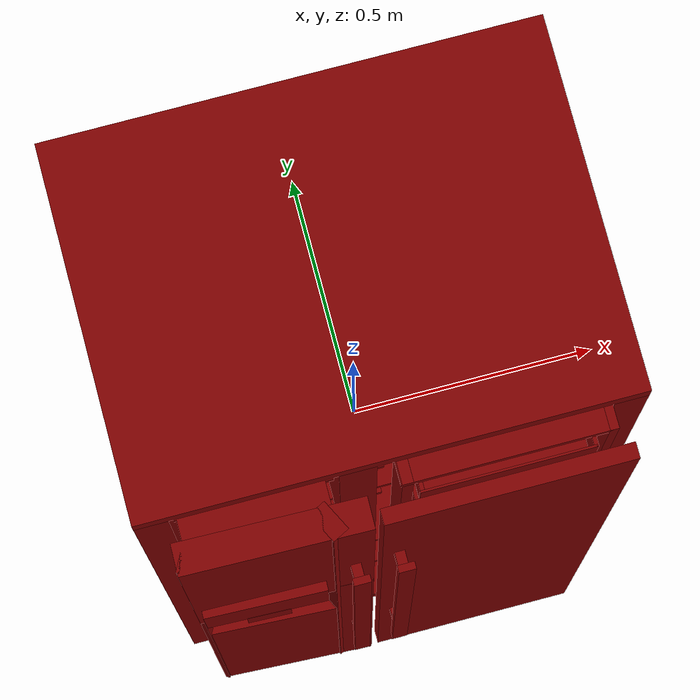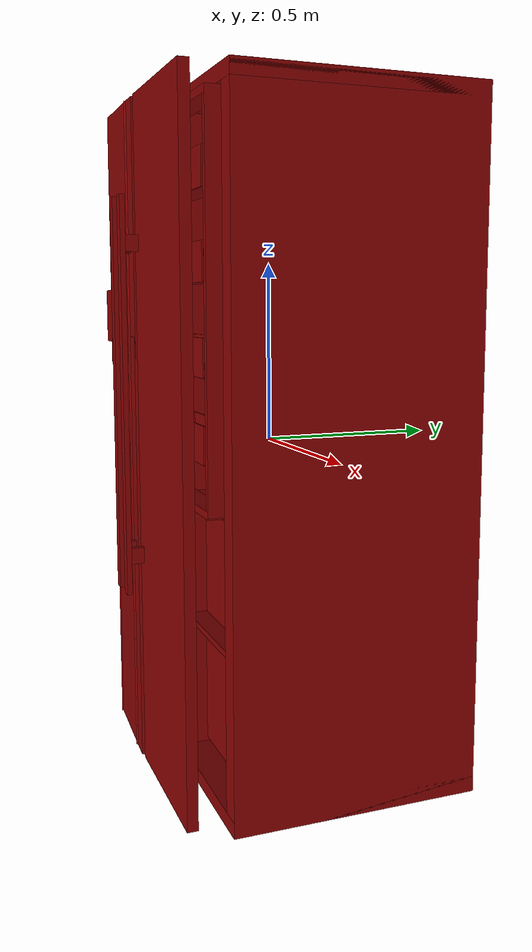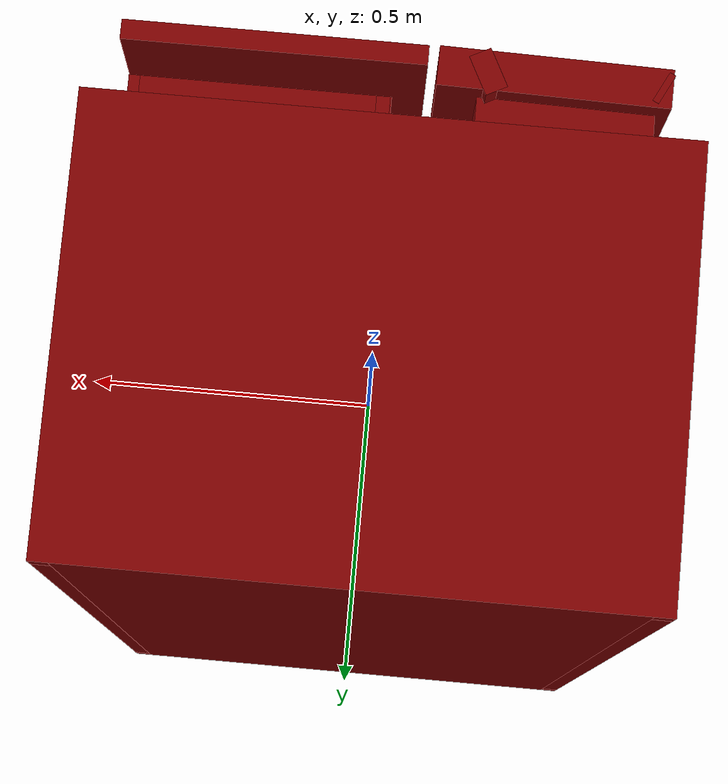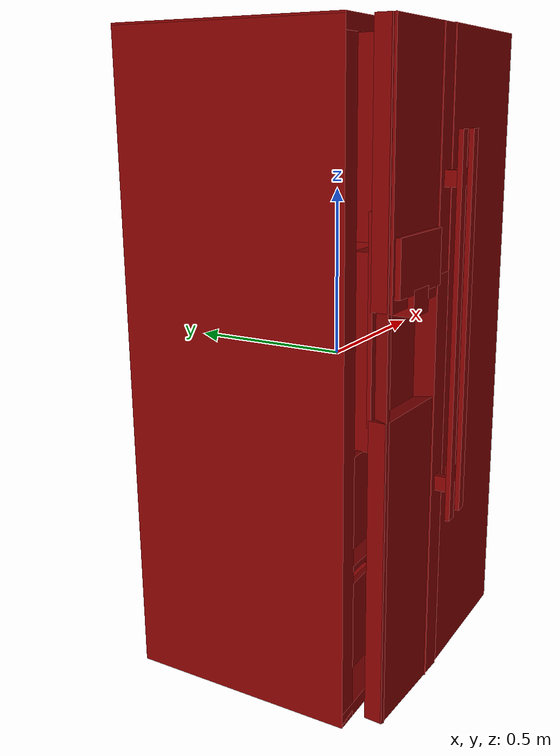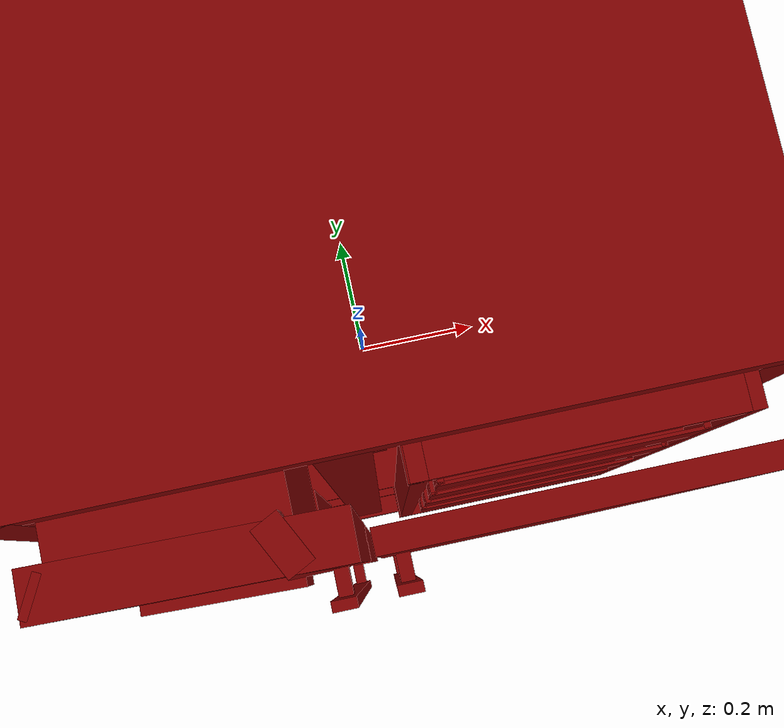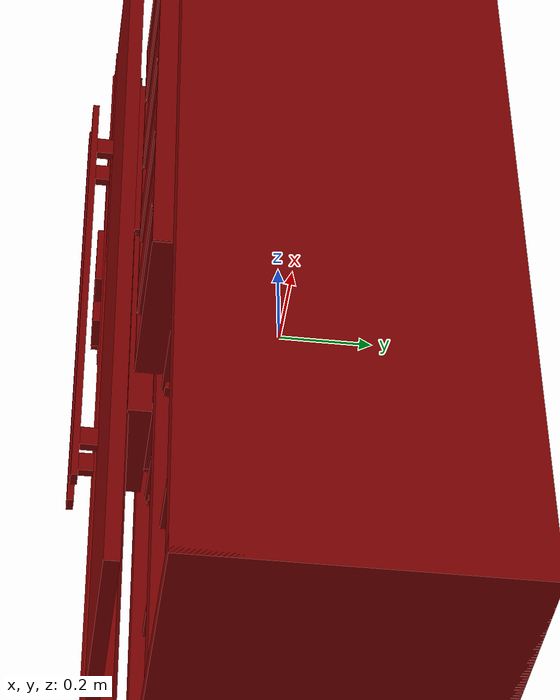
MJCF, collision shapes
<mujoco model="model">
  <compiler angle="radian"/>
  <asset>
    <mesh file="visuals/Body001.obj" name="Body001_vis"/>
    <mesh file="visuals/Body001_Clear001.obj" name="Body001_Clear001_vis"/>
    <mesh file="visuals/Door001.obj" name="Door001_vis"/>
    <mesh file="visuals/Door002.obj" name="Door002_vis"/>
    <mesh file="visuals/Door002_Clear.obj" name="Door002_Clear_vis"/>
    <mesh file="visuals/Drawer001_Clear.obj" name="Drawer001_Clear_vis"/>
    <mesh file="visuals/Drawer002_Clear.obj" name="Drawer002_Clear_vis"/>
    <mesh file="visuals/Drawer003.obj" name="Drawer003_vis"/>
    <mesh file="visuals/Drawer004.obj" name="Drawer004_vis"/>
    <texture file="visuals/T_BC001.png" name="Body001_material" type="2d"/>
    <material name="Body001_material" rgba="1 1 1 1.0" texture="Body001_material" shininess="0.6141486167907715" specular="0.3103448502657381"/>
    <texture file="visuals/T_BC001.png" name="Body001_Clear001_material" type="2d"/>
    <material name="Body001_Clear001_material" rgba="1 1 1 0.3300970792770386" texture="Body001_Clear001_material" shininess="0.141421377658844" specular="0.3103448502657381"/>
    <texture file="visuals/T_BC001.png" name="Door001_material" type="2d"/>
    <material name="Door001_material" rgba="1 1 1 1.0" texture="Door001_material" shininess="0.6141486167907715" specular="0.3103448502657381"/>
    <texture file="visuals/T_BC001.png" name="Door002_material" type="2d"/>
    <material name="Door002_material" rgba="1 1 1 1.0" texture="Door002_material" shininess="0.6141486167907715" specular="0.3103448502657381"/>
    <texture file="visuals/T_BC001.png" name="Door002_Clear_material" type="2d"/>
    <material name="Door002_Clear_material" rgba="1 1 1 0.3300970792770386" texture="Door002_Clear_material" shininess="0.141421377658844" specular="0.3103448502657381"/>
    <texture file="visuals/T_BC001.png" name="Drawer001_Clear_material" type="2d"/>
    <material name="Drawer001_Clear_material" rgba="1 1 1 0.3300970792770386" texture="Drawer001_Clear_material" shininess="0.141421377658844" specular="0.3103448502657381"/>
    <texture file="visuals/T_BC001.png" name="Drawer002_Clear_material" type="2d"/>
    <material name="Drawer002_Clear_material" rgba="1 1 1 0.3300970792770386" texture="Drawer002_Clear_material" shininess="0.141421377658844" specular="0.3103448502657381"/>
    <texture file="visuals/T_BC001.png" name="Drawer003_material" type="2d"/>
    <material name="Drawer003_material" rgba="1 1 1 1.0" texture="Drawer003_material" shininess="0.6141486167907715" specular="0.3103448502657381"/>
    <texture file="visuals/T_BC001.png" name="Drawer004_material" type="2d"/>
    <material name="Drawer004_material" rgba="1 1 1 1.0" texture="Drawer004_material" shininess="0.6141486167907715" specular="0.3103448502657381"/>
  </asset>
  <default>
    <default class="visual">
      <geom conaffinity="0" contype="0" group="1" type="mesh"/>
    </default>
    <default class="collision">
      <geom group="0" rgba="0.5 0 0 0.5"/>
    </default>
    <default class="spawn">
      <geom group="0" rgba="1 1 1 0.5" contype="0" conaffinity="0"/>
      <site group="0" rgba="1 1 1 0.5"/>
    </default>
    <default class="region">
      <geom group="1" conaffinity="0" contype="0" rgba="0 1 0 0"/>
    </default>
  </default>
  <worldbody>
    <body>
      <body name="object">
        <geom mesh="Body001_vis" type="mesh" solimp="0.998 0.998 0.001" solref="0.001 1" density="100" friction="0.95 0.3 0.1" class="visual" material="Body001_material"/>
        <geom class="collision" type="box" pos="0.426985 0.080669 0.000000" size="0.031174317002296448 0.3472144603729248 0.9458772540092468" quat="1.0 0.0 0.0 0.0"/>
        <geom class="collision" type="box" pos="0.000000 0.080808 0.925012" size="0.45815926790237427 0.34735387563705444 0.020865734666585922" quat="1.0 0.0 0.0 0.0"/>
        <geom class="collision" type="box" pos="0.000215 0.328827 -0.000000" size="0.42810675501823425 0.09933542460203171 0.9458773732185364" quat="1.0 0.0 0.0 0.0"/>
        <geom class="collision" type="box" pos="-0.058851 -0.008898 0.000052" size="0.03430929034948349 0.24979962408542633 0.904093861579895" quat="1.0 0.0 0.0 0.0"/>
        <geom class="collision" type="box" pos="-0.389241 -0.000378 -0.162497" size="0.014247119426727295 0.24221399426460266 0.008260749280452728" quat="1.0 0.0 0.0 0.0"/>
        <geom class="collision" type="box" pos="-0.427252 0.080808 -0.002839" size="0.030907582491636276 0.34735387563705444 0.9430378675460815" quat="1.0 0.0 0.0 0.0"/>
        <geom class="collision" type="box" pos="0.000124 -0.005001 -0.511726" size="0.4170524477958679 0.23744818568229675 0.008542299270629883" quat="1.0 0.0 0.0 0.0"/>
        <geom class="collision" type="box" pos="-0.100918 -0.000378 -0.162497" size="0.016719326376914978 0.24221399426460266 0.008260749280452728" quat="1.0 0.0 0.0 0.0"/>
        <geom class="collision" type="box" pos="-0.014415 -0.000378 -0.162497" size="0.016719326376914978 0.24221399426460266 0.008260749280452728" quat="1.0 0.0 0.0 0.0"/>
        <geom class="collision" type="box" pos="0.388739 -0.000378 -0.162497" size="0.016719326376914978 0.24221399426460266 0.008260749280452728" quat="1.0 0.0 0.0 0.0"/>
        <geom class="collision" type="box" pos="0.386986 0.025491 0.193872" size="0.01128388661891222 0.21634510159492493 0.008260749280452728" quat="1.0 0.0 0.0 0.0"/>
        <geom class="collision" type="box" pos="-0.014415 0.018451 0.193872" size="0.016719326376914978 0.22338435053825378 0.008260749280452728" quat="1.0 0.0 0.0 0.0"/>
        <geom class="collision" type="box" pos="-0.100918 0.018451 0.193872" size="0.016719326376914978 0.22338435053825378 0.008260749280452728" quat="1.0 0.0 0.0 0.0"/>
        <geom class="collision" type="box" pos="-0.389241 0.018451 0.193872" size="0.014247119426727295 0.22338435053825378 0.008260749280452728" quat="1.0 0.0 0.0 0.0"/>
        <geom class="collision" type="box" pos="-0.389241 0.015060 0.540342" size="0.014247119426727295 0.22677546739578247 0.008260749280452728" quat="1.0 0.0 0.0 0.0"/>
        <geom class="collision" type="box" pos="-0.100918 0.015060 0.540342" size="0.016719326376914978 0.22677552700042725 0.008260749280452728" quat="1.0 0.0 0.0 0.0"/>
        <geom class="collision" type="box" pos="-0.014415 0.015060 0.540342" size="0.016719326376914978 0.22677549719810486 0.008260749280452728" quat="1.0 0.0 0.0 0.0"/>
        <geom class="collision" type="box" pos="0.385574 0.015060 0.540342" size="0.010424098931252956 0.22677555680274963 0.008260749280452728" quat="1.0 0.0 0.0 0.0"/>
        <geom class="collision" type="box" pos="0.000000 0.080808 -0.924960" size="0.45815926790237427 0.34735387563705444 0.020917614921927452" quat="1.0 0.0 0.0 0.0"/>
        <geom class="collision" type="box" pos="-0.214670 -0.007342 -0.147802" size="0.19012895226478577 0.2397892326116562 0.006109719164669514" quat="1.0 0.0 0.0 0.0"/>
        <geom class="collision" type="box" pos="-0.214670 0.018456 0.211554" size="0.19012895226478577 0.21399196982383728 0.007860741578042507" quat="1.0 0.0 0.0 0.0"/>
        <geom class="collision" type="box" pos="-0.215178 0.018456 0.554935" size="0.1883099377155304 0.21399198472499847 0.005926718935370445" quat="1.0 0.0 0.0 0.0"/>
        <body name="Body001_Clear001">
          <geom mesh="Body001_Clear001_vis" type="mesh" solimp="0.998 0.998 0.001" solref="0.001 1" density="100" friction="0.95 0.3 0.1" class="visual" material="Body001_Clear001_material"/>
          <geom class="collision" type="box" pos="0.162008 -0.007342 -0.147802" size="0.255168080329895 0.2397892326116562 0.006109719164669514" quat="1.0 0.0 0.0 0.0"/>
          <geom class="collision" type="box" pos="0.162008 0.018456 0.211554" size="0.255168080329895 0.21399196982383728 0.007860741578042507" quat="1.0 0.0 0.0 0.0"/>
          <geom class="collision" type="box" pos="0.161501 0.018456 0.554935" size="0.25334906578063965 0.21399198472499847 0.005926718935370445" quat="1.0 0.0 0.0 0.0"/>
        </body>
        <body name="freezer_door">
          <joint axis="0.0 0.0 -1.0" pos="-0.413870 -0.350109 0.001723" limited="true" name="freezer_door_joint" range="0.0 1.5707963267948966" type="hinge" damping="1" frictionloss="1" armature=".01" stiffness="0.05"/>
          <geom mesh="Door001_vis" type="mesh" solimp="0.998 0.998 0.001" solref="0.001 1" density="100" friction="0.95 0.3 0.1" class="visual" material="Door001_material"/>
          <geom class="collision" type="box" pos="-0.375226 -0.225431 -0.042792" size="0.005302963778376579 0.03438347578048706 0.045121245086193085" quat="1.0 0.0 0.0 0.0"/>
          <geom class="collision" type="box" pos="-0.264832 -0.198077 -0.040802" size="0.10756411403417587 0.002234865678474307 0.03930643945932388" quat="1.0 0.0 0.0 0.0"/>
          <geom class="collision" type="box" pos="-0.152667 -0.224823 -0.042480" size="0.006141011603176594 0.03377559408545494 0.045045383274555206" quat="1.0 0.0 0.0 0.0"/>
          <geom class="collision" type="box" pos="-0.259094 -0.225599 -0.082862" size="0.1115652471780777 0.033953163772821426 0.004646170884370804" quat="1.0 0.0 0.0 0.0"/>
          <geom class="collision" type="box" pos="-0.230823 -0.343503 0.591810" size="0.17186114192008972 0.029590152204036713 0.3520924150943756" quat="0.9999542236328125 0.0 -0.0 -0.00956775899976492" name="freezer_door_main"/>
          <geom class="collision" type="box" pos="-0.095434 -0.347354 -0.317986" size="0.0363582968711853 0.029590152204036713 0.6141636371612549" quat="0.9996857047080994 0.0 -0.0 -0.02506900392472744"/>
          <geom class="collision" type="box" pos="-0.132719 -0.343187 0.006112" size="0.017285535112023354 0.031519815325737 0.9377908110618591" quat="0.972369909286499 0.0 0.0 0.23344537615776062"/>
          <geom class="collision" type="box" pos="-0.389435 -0.341123 0.006112" size="0.005014027003198862 0.024861132726073265 0.9377908110618591" quat="0.972369909286499 0.0 -0.0 -0.233445405960083"/>
          <geom class="collision" type="box" pos="-0.279383 -0.314769 0.211052" size="0.12201347947120667 0.006266779266297817 0.2774510681629181" quat="0.9996857047080994 0.0 -0.0 -0.02506900392472744"/>
          <geom class="collision" type="box" pos="-0.269159 -0.356126 0.251180" size="0.04307648912072182 0.03443373367190361 0.03533017635345459" quat="0.9998664259910583 0.0 -0.0 -0.016344254836440086"/>
          <geom class="collision" type="box" pos="-0.270818 -0.355081 0.351562" size="0.11950033903121948 0.03443373367190361 0.07683902978897095" quat="0.9998664259910583 0.0 -0.0 -0.016344254836440086"/>
          <geom class="collision" type="box" pos="-0.230899 -0.343189 -0.489177" size="0.17186114192008972 0.02695966698229313 0.44297271966934204" quat="0.9996857047080994 0.0 -0.0 -0.02506900392472744"/>
          <geom class="collision" type="box" pos="-0.251364 -0.270292 0.656601" size="0.13150446116924286 0.050830140709877014 0.24646736681461334" quat="1.0 0.0 0.0 0.0"/>
          <geom class="collision" type="box" pos="-0.256377 -0.284258 0.125955" size="0.1384330540895462 0.026513097807765007 0.2620489001274109" quat="1.0 0.0 0.0 0.0"/>
          <geom class="collision" type="box" pos="-0.095409 -0.421697 0.128459" size="0.016213277354836464 0.007124675903469324 0.5508098006248474" quat="1.0 0.0 0.0 0.0" name="freezer_door_handle_main"/>
          <geom class="collision" type="box" pos="-0.095338 -0.396243 0.551513" size="0.009819971397519112 0.019211111590266228 0.022575894370675087" quat="1.0 0.0 0.0 0.0" name="freezer_door_handle_1"/>
          <geom class="collision" type="box" pos="-0.095338 -0.396243 -0.314072" size="0.009819971397519112 0.019211111590266228 0.022575894370675087" quat="1.0 0.0 0.0 0.0" name="freezer_door_handle_2"/>
        </body>
        <body name="fridge_door">
          <joint axis="0.0 0.0 1.0" pos="0.413762 -0.347951 0.002113" limited="true" name="fridge_door_joint" range="0.0 1.5707963267948966" type="hinge" damping="1" frictionloss="1" armature=".01" stiffness="0.05"/>
          <geom mesh="Door002_vis" type="mesh" solimp="0.998 0.998 0.001" solref="0.001 1" density="100" friction="0.95 0.3 0.1" class="visual" material="Door002_material"/>
          <geom class="collision" type="box" pos="0.181499 -0.359482 0.006235" size="0.2255043089389801 0.014911549165844917 0.9396424889564514" quat="1.0 0.0 0.0 0.0" name="fridge_door_main"/>
          <geom class="collision" type="box" pos="0.198717 -0.278132 0.885137" size="0.1943289339542389 0.029394090175628662 0.010065913200378418" quat="1.0 0.0 0.0 0.0"/>
          <geom class="collision" type="box" pos="0.385573 -0.278132 0.381353" size="0.00825885683298111 0.029394090175628662 0.5138506889343262" quat="1.0 0.0 0.0 0.0"/>
          <geom class="collision" type="box" pos="0.016719 -0.278132 0.381353" size="0.010247983038425446 0.029394090175628662 0.5138506889343262" quat="1.0 0.0 0.0 0.0"/>
          <geom class="collision" type="box" pos="0.198717 -0.278132 -0.126325" size="0.1943289339542389 0.029394090175628662 0.010065913200378418" quat="1.0 0.0 0.0 0.0"/>
          <geom class="collision" type="box" pos="-0.012200 -0.394085 -0.314072" size="0.009819971397519112 0.019211111590266228 0.022575894370675087" quat="1.0 0.0 0.0 0.0" name="fridge_door_handle_1"/>
          <geom class="collision" type="box" pos="-0.012200 -0.394085 0.551513" size="0.009819971397519112 0.019211111590266228 0.022575894370675087" quat="1.0 0.0 0.0 0.0" name="fridge_door_handle_2"/>
          <geom class="collision" type="box" pos="-0.012271 -0.419539 0.128459" size="0.016213277354836464 0.007124675903469324 0.5508098006248474" quat="1.0 0.0 0.0 0.0" name="fridge_door_handle_main"/>
          <body name="Door002_Clear">
            <geom mesh="Door002_Clear_vis" type="mesh" solimp="0.998 0.998 0.001" solref="0.001 1" density="100" friction="0.95 0.3 0.1" class="visual" material="Door002_Clear_material"/>
            <geom class="collision" type="box" pos="0.363939 -0.271040 0.259014" size="0.004108804743736982 0.03693544864654541 0.04862546920776367" quat="1.0 0.0 0.0 0.0"/>
            <geom class="collision" type="box" pos="0.045529 -0.271040 0.259014" size="0.00410880520939827 0.03693544864654541 0.04862546920776367" quat="1.0 0.0 0.0 0.0"/>
            <geom class="collision" type="box" pos="0.204673 -0.234663 0.259014" size="0.16337506473064423 0.0021437890827655792 0.04862546920776367" quat="1.0 0.0 0.0 0.0"/>
            <geom class="collision" type="box" pos="0.204673 -0.270081 0.211382" size="0.16337506473064423 0.03606615960597992 0.00257178395986557" quat="1.0 0.0 0.0 0.0"/>
            <geom class="collision" type="box" pos="0.204673 -0.307052 0.259014" size="0.16337506473064423 0.002143790014088154 0.04862546920776367" quat="1.0 0.0 0.0 0.0"/>
            <geom class="collision" type="box" pos="0.204673 -0.307052 0.044292" size="0.16337506473064423 0.002143790014088154 0.048766158521175385" quat="1.0 0.0 0.0 0.0"/>
            <geom class="collision" type="box" pos="0.204673 -0.270362 -0.003832" size="0.16337506473064423 0.03578478842973709 0.00257178395986557" quat="1.0 0.0 0.0 0.0"/>
            <geom class="collision" type="box" pos="0.204673 -0.235225 0.044292" size="0.16337506473064423 0.0021437890827655792 0.048766158521175385" quat="1.0 0.0 0.0 0.0"/>
            <geom class="collision" type="box" pos="0.045529 -0.271321 0.044292" size="0.00410880520939827 0.03665407747030258 0.048766158521175385" quat="1.0 0.0 0.0 0.0"/>
            <geom class="collision" type="box" pos="0.363939 -0.271321 0.044292" size="0.004108804743736982 0.03665407747030258 0.048766158521175385" quat="1.0 0.0 0.0 0.0"/>
            <geom class="collision" type="box" pos="0.045529 -0.270673 0.490797" size="0.00410880520939827 0.037302352488040924 0.049426592886447906" quat="1.0 0.0 0.0 0.0"/>
            <geom class="collision" type="box" pos="0.206208 -0.233929 0.490797" size="0.15882854163646698 0.0021437890827655792 0.049426592886447906" quat="1.0 0.0 0.0 0.0"/>
            <geom class="collision" type="box" pos="0.204673 -0.269714 0.443942" size="0.16337506473064423 0.03643306344747543 0.00257178395986557" quat="1.0 0.0 0.0 0.0"/>
            <geom class="collision" type="box" pos="0.204673 -0.307052 0.490797" size="0.16337506473064423 0.002143790014088154 0.049426592886447906" quat="1.0 0.0 0.0 0.0"/>
            <geom class="collision" type="box" pos="0.204673 -0.269280 0.666563" size="0.16337506473064423 0.036867283284664154 0.00257178395986557" quat="1.0 0.0 0.0 0.0"/>
            <geom class="collision" type="box" pos="0.204673 -0.233060 0.713229" size="0.16337506473064423 0.0021437890827655792 0.04884042590856552" quat="1.0 0.0 0.0 0.0"/>
            <geom class="collision" type="box" pos="0.045529 -0.270239 0.713229" size="0.00410880520939827 0.037736572325229645 0.04884042590856552" quat="1.0 0.0 0.0 0.0"/>
            <geom class="collision" type="box" pos="0.363939 -0.270239 0.713229" size="0.004108804743736982 0.037736572325229645 0.04884042590856552" quat="1.0 0.0 0.0 0.0"/>
            <geom class="collision" type="box" pos="0.363939 -0.270673 0.490797" size="0.004108804743736982 0.037302352488040924 0.049426592886447906" quat="1.0 0.0 0.0 0.0"/>
            <geom class="collision" type="box" pos="0.204673 -0.307052 0.713229" size="0.16337506473064423 0.002143790014088154 0.04884042590856552" quat="1.0 0.0 0.0 0.0"/>
          </body>
        </body>
        <body name="fridge_drawer0">
          <joint axis="0.0 -1.0 0.0" pos="0.172978 -0.032505 -0.725532" limited="true" name="fridge_drawer0_joint" range="0.0 0.4" type="slide" damping="1" frictionloss="1" armature=".01" stiffness="0.05"/>
          <geom mesh="Drawer001_Clear_vis" type="mesh" solimp="0.998 0.998 0.001" solref="0.001 1" density="100" friction="0.95 0.3 0.1" class="visual" material="Drawer001_Clear_material"/>
          <geom class="collision" type="box" pos="0.173050 -0.185853 -0.732005" size="0.18761920928955078 0.005388585384935141 0.1551920771598816" quat="1.0 0.0 0.0 0.0"/>
          <geom class="collision" type="box" pos="0.170103 0.172430 -0.734326" size="0.17976348102092743 0.002890842966735363 0.1528012901544571" quat="1.0 0.0 0.0 0.0"/>
          <geom class="collision" type="box" pos="-0.000512 -0.005781 -0.734326" size="0.002890831558033824 0.17439062893390656 0.1528007835149765" quat="1.0 0.0 0.0 0.0"/>
          <geom class="collision" type="box" pos="0.346394 -0.005781 -0.734326" size="0.002890823408961296 0.17439009249210358 0.15280035138130188" quat="1.0 0.0 0.0 0.0"/>
          <geom class="collision" type="box" pos="0.170103 -0.005781 -0.885178" size="0.1797623336315155 0.1743895709514618 0.0028180074878036976" quat="1.0 0.0 0.0 0.0"/>
          <geom class="region" name="reg_fridge_drawer0" type="box" pos="0.172 -0.005 -0.73" size="0.167 0.168 0.15"/>
        </body>
        <body name="fridge_drawer1">
          <joint axis="0.0 -1.0 0.0" pos="0.172978 -0.032366 -0.331264" limited="true" name="fridge_drawer1_joint" range="0.0 0.4" type="slide" damping="1" frictionloss="1" armature=".01" stiffness="0.05"/>
          <geom mesh="Drawer002_Clear_vis" type="mesh" solimp="0.998 0.998 0.001" solref="0.001 1" density="100" friction="0.95 0.3 0.1" class="visual" material="Drawer002_Clear_material"/>
          <geom class="collision" type="box" pos="0.172610 0.000476 -0.489042" size="0.17567558586597443 0.18519148230552673 0.0027973607648164034" quat="1.0 0.0 0.0 0.0"/>
          <geom class="collision" type="box" pos="0.345412 0.004585 -0.339162" size="0.002874444704502821 0.18108250200748444 0.15289714932441711" quat="1.0 0.0 0.0 0.0"/>
          <geom class="collision" type="box" pos="0.000140 0.000387 -0.339162" size="0.003205449553206563 0.18528084456920624 0.1528969407081604" quat="1.0 0.0 0.0 0.0"/>
          <geom class="collision" type="box" pos="0.172610 0.177093 -0.339695" size="0.17567558586597443 0.008558593690395355 0.15342991054058075" quat="1.0 0.0 0.0 0.0"/>
          <geom class="collision" type="box" pos="0.173617 -0.184845 -0.340382" size="0.1848633885383606 0.005358037073165178 0.15876071155071259" quat="1.0 0.0 0.0 0.0"/>
          <geom class="region" name="reg_fridge_drawer1" type="box" pos="0.172 -0.005 -0.335" size="0.167 0.168 0.15"/>
        </body>
        <body name="freezer_drawer0">
          <joint axis="0.0 -1.0 0.0" pos="-0.232228 -0.034004 -0.746386" limited="true" name="freezer_drawer0_joint" range="0.0 0.4" type="slide" damping="1" frictionloss="1" armature=".01" stiffness="0.05"/>
          <geom mesh="Drawer003_vis" type="mesh" solimp="0.998 0.998 0.001" solref="0.001 1" density="100" friction="0.95 0.3 0.1" class="visual" material="Drawer003_material"/>
          <geom class="collision" type="box" pos="-0.232351 -0.005920 -0.884010" size="0.1212400272488594 0.1666526198387146 0.002657260512933135" quat="1.0 0.0 0.0 0.0"/>
          <geom class="collision" type="box" pos="-0.114332 -0.007602 -0.749473" size="0.0028497143648564816 0.16833415627479553 0.1318802386522293" quat="1.0 0.0 0.0 0.0"/>
          <geom class="collision" type="box" pos="-0.350728 -0.005920 -0.749473" size="0.0028497122693806887 0.16665256023406982 0.1318800449371338" quat="1.0 0.0 0.0 0.0"/>
          <geom class="collision" type="box" pos="-0.232351 0.158006 -0.750326" size="0.1212395504117012 0.0027259127236902714 0.13102705776691437" quat="1.0 0.0 0.0 0.0"/>
          <geom class="collision" type="box" pos="-0.232655 -0.186140 -0.755172" size="0.12792569398880005 0.008693831972777843 0.14004230499267578" quat="1.0 0.0 0.0 0.0"/>
          <geom class="region" name="reg_freezer_drawer0" type="box" pos="-0.233 -0.01 -0.73" size="0.109 0.155 0.15"/>
        </body>
        <body name="freezer_drawer1">
          <joint axis="0.0 -1.0 0.0" pos="-0.232145 -0.034237 -0.350987" limited="true" name="freezer_drawer1_joint" range="0.0 0.4" type="slide" damping="1" frictionloss="1" armature=".01" stiffness="0.05"/>
          <geom mesh="Drawer004_vis" type="mesh" solimp="0.998 0.998 0.001" solref="0.001 1" density="100" friction="0.95 0.3 0.1" class="visual" material="Drawer004_material"/>
          <geom class="collision" type="box" pos="-0.232655 -0.187778 -0.359806" size="0.12922604382038116 0.008801015093922615 0.14111721515655518" quat="1.0 0.0 0.0 0.0"/>
          <geom class="collision" type="box" pos="-0.229841 0.159724 -0.357595" size="0.11616400629281998 0.0027535082772374153 0.13469478487968445" quat="1.0 0.0 0.0 0.0"/>
          <geom class="collision" type="box" pos="-0.348888 -0.004137 -0.357595" size="0.002895521931350231 0.16661526262760162 0.13469475507736206" quat="1.0 0.0 0.0 0.0"/>
          <geom class="collision" type="box" pos="-0.116491 -0.004255 -0.357595" size="0.002459575654938817 0.16649766266345978 0.13469471037387848" quat="1.0 0.0 0.0 0.0"/>
          <geom class="collision" type="box" pos="-0.229841 -0.004137 -0.489606" size="0.11616405099630356 0.16661514341831207 0.002684215782210231" quat="1.0 0.0 0.0 0.0"/>
          <geom class="region" name="reg_freezer_drawer1" type="box" pos="-0.233 -0.01 -0.335" size="0.109 0.155 0.15"/>
        </body>
        <geom class="region" name="reg_main" type="box" pos="0.0 0.017694500000000002 0.0" size="0.46 0.4104675 0.946"/>
        <geom class="region" name="reg_fridge_shelf0" type="box" pos="0.178 -0.01 0.025" size="0.19 0.21 0.165"/>
        <geom class="region" name="reg_fridge_shelf1" type="box" pos="0.178 0.01 0.377" size="0.19 0.19 0.16"/>
        <geom class="region" name="reg_fridge_shelf2" type="box" pos="0.178 0.01 0.73" size="0.19 0.19 0.165"/>
        <geom class="region" name="reg_freezer_shelf0" type="box" pos="-0.24 -0.01 0.025" size="0.135 0.21 0.165"/>
        <geom class="region" name="reg_freezer_shelf1" type="box" pos="-0.24 0.01 0.377" size="0.135 0.19 0.16"/>
        <geom class="region" name="reg_freezer_shelf2" type="box" pos="-0.24 0.01 0.73" size="0.135 0.19 0.165"/>
      </body>
    </body>
  </worldbody>
  <actuator>
    <motor name="fridge_door_joint_actuator" joint="fridge_door_joint" gear="50"/>
    <motor name="freezer_door_joint_actuator" joint="freezer_door_joint" gear="50"/>
    <motor name="fridge_drawer0_joint_actuator" joint="fridge_drawer0_joint" gear="50"/>
    <motor name="fridge_drawer1_joint_actuator" joint="fridge_drawer1_joint" gear="50"/>
    <motor name="freezer_drawer0_joint_actuator" joint="freezer_drawer0_joint" gear="50"/>
    <motor name="freezer_drawer1_joint_actuator" joint="freezer_drawer1_joint" gear="50"/>
  </actuator>
</mujoco>
